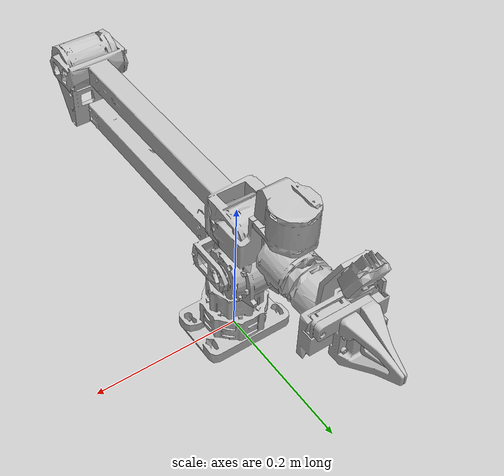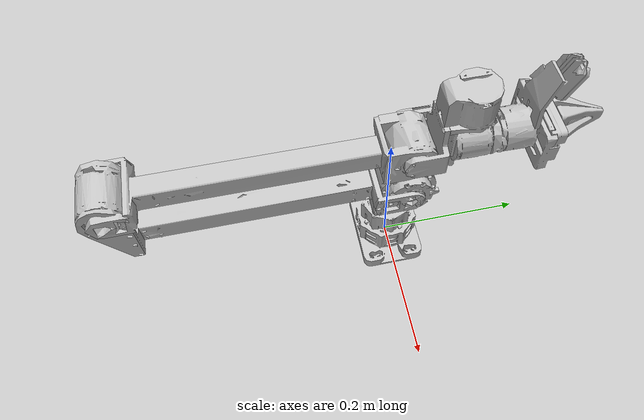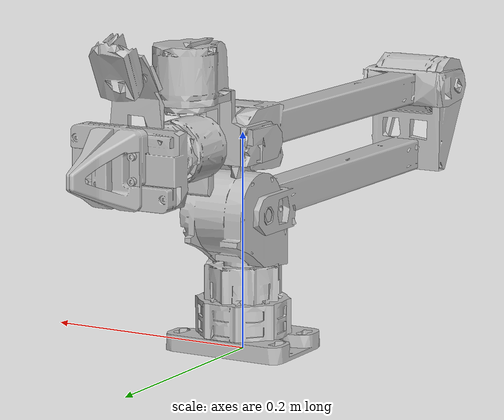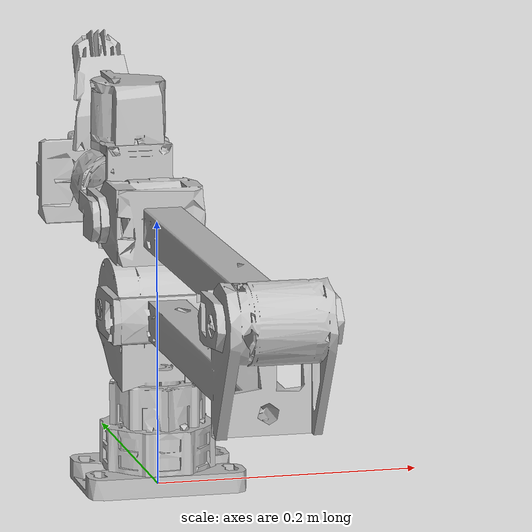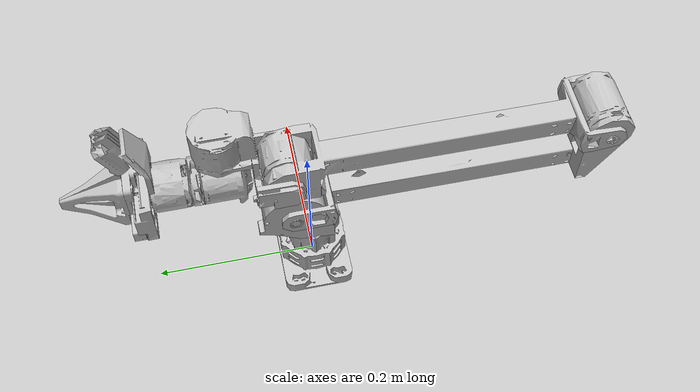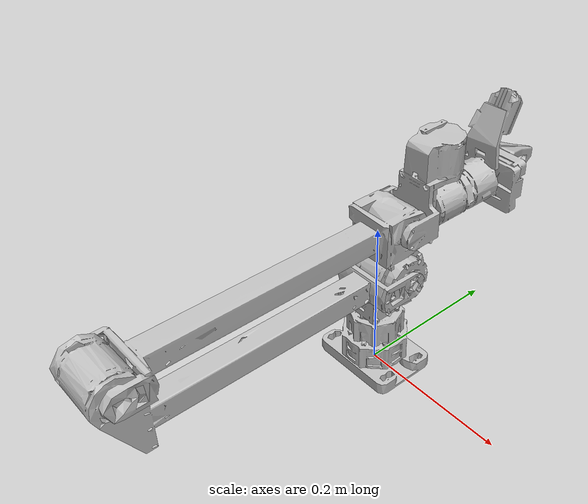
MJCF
<mujoco model="big-yam-urdf">
    <compiler angle="radian" meshdir="assets"/>
    <size njmax="500" nconmax="100" />
    <asset>
        <mesh name="joint1" file="joint1.STL" />
        <mesh name="joint2_link" file="joint2_link.STL" />
        <mesh name="joint3_link" file="joint3_link.STL" />
        <mesh name="joint4_link" file="joint4_link.STL" />
        <mesh name="joint5_link" file="joint5_link.STL" />
        <mesh name="joint6_link" file="joint6_link.STL" />
        <mesh name="gripper_link" file="gripper_link.STL" />
        <mesh name="finger-l-link" file="finger-l-link.STL" />
        <mesh name="finger-r-link" file="finger-r-link.STL" />
    </asset>
    <worldbody>
        <geom type="mesh" rgba="0.752941 0.752941 0.752941 1" mesh="joint1" />
        <body name="joint2_link" pos="0 0 0.07735">
            <inertial pos="0.00262043 0.0186981 0.0476979" quat="0.477329 0.878707 -0.00124457 0.00543518" mass="0.844869" diaginertia="0.00057425 0.000428775 0.000395685" />
            <joint name="joint2" pos="0 0 0" axis="0 0 1" range="-2.61799 3.13" actuatorfrcrange="-10 10"/>
            <geom type="mesh" rgba="0.752941 0.752941 0.752941 1" mesh="joint2_link" />
            <body name="joint3_link" pos="0 0.021912 0.053202">
                <inertial pos="0.00386212 -0.27688 0.0327451" quat="0.711298 0.702816 -0.00721743 0.00719254" mass="0.87676" diaginertia="0.00182975 0.00177963 0.000341322" />
                <joint name="joint3" pos="0 0 0" axis="-1 0 0"  range="0 3.65" actuatorfrcrange="-10 10"/>
                <geom type="mesh" rgba="0.752941 0.752941 0.752941 1" mesh="joint3_link" />
                <body name="joint4_link" pos="0 -0.3787 0.068">
                    <inertial pos="0.00320447 0.26687 -5.98855e-06" quat="0.707044 0.707124 0.00347899 -0.00727348" mass="0.849152" diaginertia="0.00176365 0.00172838 0.000252411" />
                    <joint name="joint4" pos="0 0 0" axis="1 0 0" range="0 3.13" actuatorfrcrange="-10 10"/>
                    <geom type="mesh" rgba="0.752941 0.752941 0.752941 1" mesh="joint4_link" />
                    <body name="joint5_link" pos="0 0.38198 0">
                        <inertial pos="-0.000204601 0.0595323 0.0500375" quat="0.174559 0.714795 -0.223159 0.639373" mass="0.465659" diaginertia="0.00021982 0.000163919 0.000126974" />
                        <joint name="joint5" pos="0 0 0" axis="1 0 0" range="-1.65 1.65" actuatorfrcrange="-10 10"/>
                        <geom type="mesh" rgba="0.752941 0.752941 0.752941 1" mesh="joint5_link" />
                        <body name="joint6_link" pos="0 0.074 0.0455">
                            <inertial pos="-4.72877e-05 -0.00118652 -0.0426116" quat="0.706401 -0.0368625 0.0458386 0.705363" mass="0.382514" diaginertia="0.000149214 9.5343e-05 8.35947e-05" />
                            <joint name="joint6" pos="0 0 0" axis="0 0 1" range="-1.5708 1.5708" actuatorfrcrange="-10 10"/>
                            <geom type="mesh" rgba="0.752941 0.752941 0.752941 1" mesh="joint6_link" />
                            <body name="gripper_link" pos="0 0.0235 -0.0455">
                                <inertial pos="0.000137378 0.0463253 0.00816867" quat="0.512468 0.488154 0.508448 0.490473" mass="0.567147" diaginertia="0.000305066 0.000202878 0.00012419" />
                                <joint name="gripper" pos="0 0 0" axis="0 -1 0" range="-2.0944 2.0944" actuatorfrcrange="-10 10"/>
                                <geom type="mesh" rgba="0.752941 0.752941 0.752941 1" mesh="gripper_link" />
                                <body name="finger-l-link" pos="0 0.0591 0">
                                    <inertial pos="0.00424575 0.029046 0.0114616" quat="0.448249 0.28597 0.249103 0.80947" mass="0.1930649" diaginertia="3.75539e-05 3.3476e-05 2.89678e-05" />
                                    <geom type="mesh" rgba="0.752941 0.752941 0.752941 1" mesh="finger-l-link" />
                                </body>
                                <body name="finger-r-link" pos="0 0.0591 0">
                                    <inertial pos="-0.00424575 0.029046 -0.0114616" quat="0.80947 0.249103 0.28597 0.448249" mass="0.1930649" diaginertia="3.75539e-05 3.3476e-05 2.89678e-05" />
                                    <geom type="mesh" rgba="0.752941 0.752941 0.752941 1" mesh="finger-r-link" />
                                </body>
                            </body>
                        </body>
                    </body>
                </body>
            </body>
        </body>
    </worldbody>
</mujoco>
